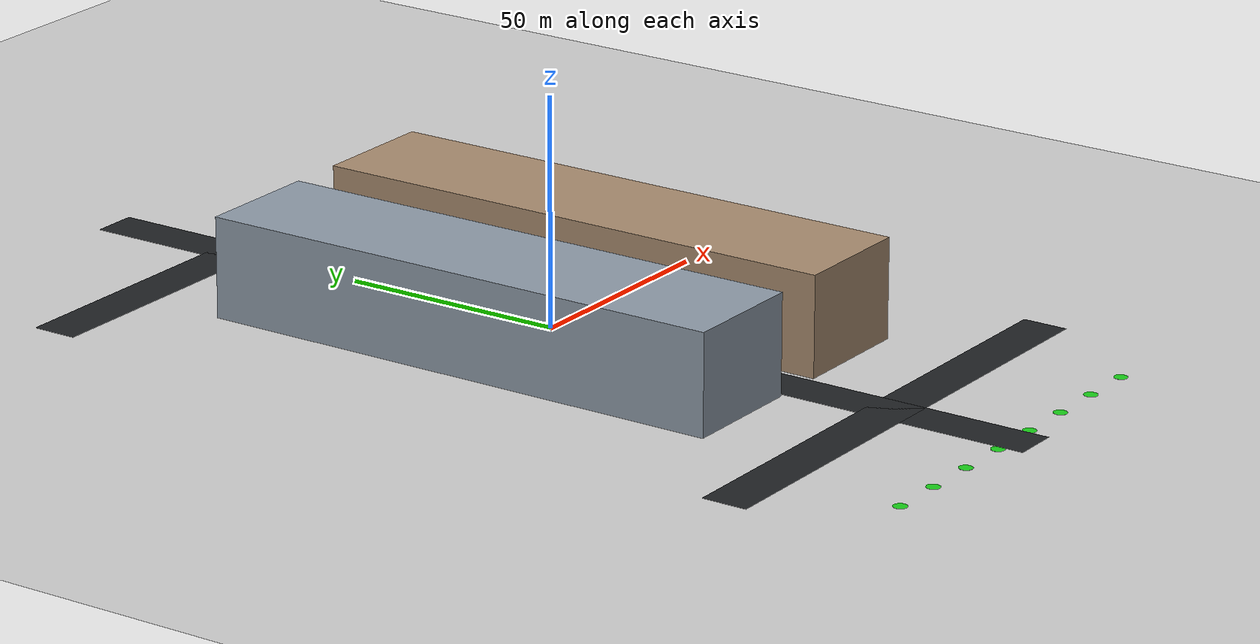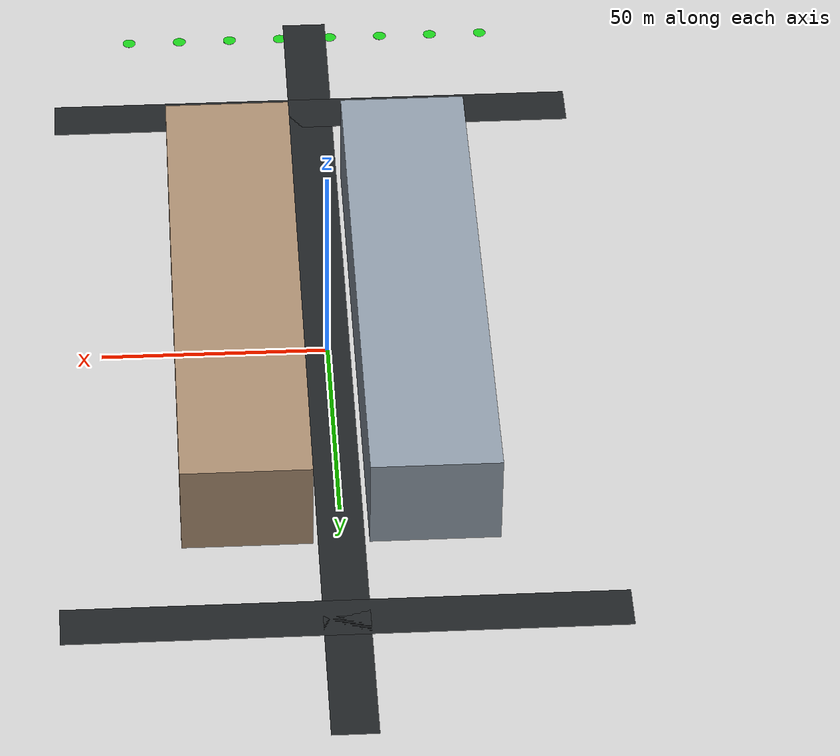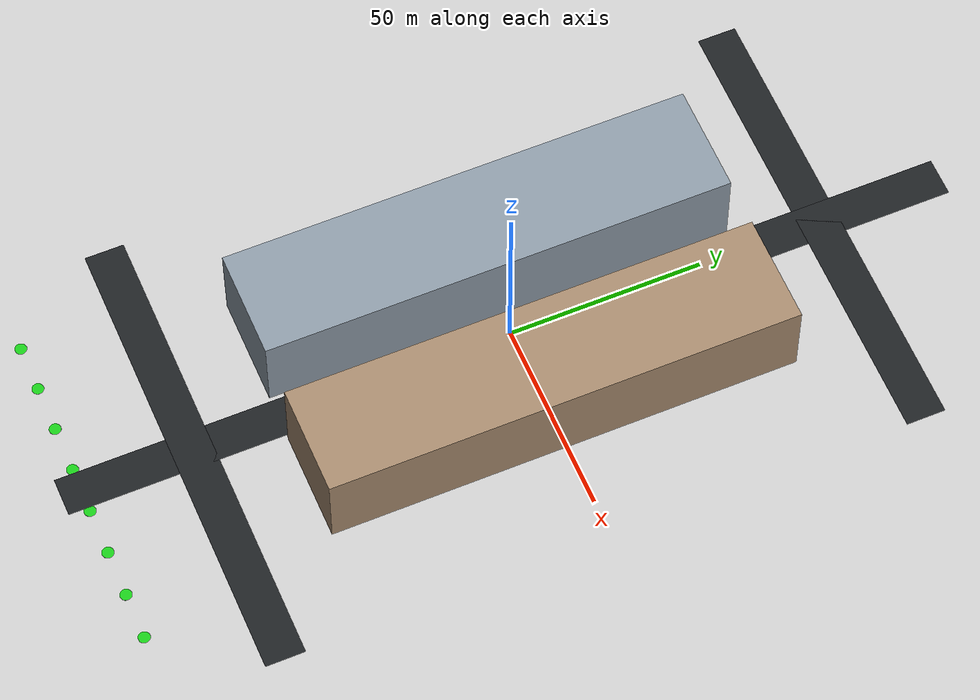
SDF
<?xml version="1.0"?>
<sdf version="1.6"><world name="outdoor_scale_yard">
  <physics name="default_physics" type="ode"><max_step_size>0.004</max_step_size><real_time_factor>1</real_time_factor><real_time_update_rate>250</real_time_update_rate><magnetic_field>6.0e-6 2.3e-5 -4.2e-5</magnetic_field></physics>
  <gravity>0 0 -9.8066</gravity>
  <include><uri>model://sun</uri></include>
  <include><uri>model://ground_plane</uri></include>
  <spherical_coordinates><surface_model>EARTH_WGS84</surface_model><latitude_deg>47.397742</latitude_deg><longitude_deg>8.545594</longitude_deg><elevation>488</elevation><heading_deg>0</heading_deg></spherical_coordinates>
<model name="road_0"><static>true</static><pose>0.000 0.000 0.012 0.000 0.000 0.000</pose><link name="link"><visual name="visual"><cast_shadows>false</cast_shadows><geometry><box><size>10 230 0.02</size></box></geometry><material><ambient>0.12 0.13 0.14 1</ambient><diffuse>0.12 0.13 0.14 1</diffuse></material></visual></link></model>
<model name="road_1"><static>true</static><pose>0.000 -82.000 0.012 0.000 0.000 0.000</pose><link name="link"><visual name="visual"><cast_shadows>false</cast_shadows><geometry><box><size>120 10 0.02</size></box></geometry><material><ambient>0.12 0.13 0.14 1</ambient><diffuse>0.12 0.13 0.14 1</diffuse></material></visual></link></model>
<model name="road_2"><static>true</static><pose>0.000 82.000 0.012 0.000 0.000 0.000</pose><link name="link"><visual name="visual"><cast_shadows>false</cast_shadows><geometry><box><size>120 10 0.02</size></box></geometry><material><ambient>0.12 0.13 0.14 1</ambient><diffuse>0.12 0.13 0.14 1</diffuse></material></visual></link></model>
<model name="building_0"><static>true</static><pose>-20.000 0.000 11.000 0 0 0</pose><link name="link"><collision name="collision"><geometry><box><size>28 120 22</size></box></geometry></collision><visual name="visual"><geometry><box><size>28 120 22</size></box></geometry><material><ambient>0.55 0.60 0.65 1</ambient><diffuse>0.55 0.60 0.65 1</diffuse></material></visual></link></model>
<model name="building_1"><static>true</static><pose>20.000 0.000 11.000 0 0 0</pose><link name="link"><collision name="collision"><geometry><box><size>28 120 22</size></box></geometry></collision><visual name="visual"><geometry><box><size>28 120 22</size></box></geometry><material><ambient>0.65 0.54 0.43 1</ambient><diffuse>0.65 0.54 0.43 1</diffuse></material></visual></link></model>
<model name="start_zone"><static>true</static><pose>-42.000 -110.000 -0.009 0.000 0.000 0.000</pose><link name="link"><visual name="visual"><cast_shadows>false</cast_shadows><geometry><cylinder><radius>1.5</radius><length>0.02</length></cylinder></geometry><material><ambient>0.1 0.8 0.1 1</ambient><diffuse>0.1 0.8 0.1 1</diffuse></material></visual></link></model>
<model name="uav_pad_1"><static>true</static><pose>-30.000 -110.000 -0.009 0.000 0.000 0.000</pose><link name="link"><visual name="visual"><cast_shadows>false</cast_shadows><geometry><cylinder><radius>1.5</radius><length>0.02</length></cylinder></geometry><material><ambient>0.1 0.8 0.1 1</ambient><diffuse>0.1 0.8 0.1 1</diffuse></material></visual></link></model>
<model name="uav_pad_2"><static>true</static><pose>-18.000 -110.000 -0.009 0.000 0.000 0.000</pose><link name="link"><visual name="visual"><cast_shadows>false</cast_shadows><geometry><cylinder><radius>1.5</radius><length>0.02</length></cylinder></geometry><material><ambient>0.1 0.8 0.1 1</ambient><diffuse>0.1 0.8 0.1 1</diffuse></material></visual></link></model>
<model name="uav_pad_3"><static>true</static><pose>-6.000 -110.000 -0.009 0.000 0.000 0.000</pose><link name="link"><visual name="visual"><cast_shadows>false</cast_shadows><geometry><cylinder><radius>1.5</radius><length>0.02</length></cylinder></geometry><material><ambient>0.1 0.8 0.1 1</ambient><diffuse>0.1 0.8 0.1 1</diffuse></material></visual></link></model>
<model name="uav_pad_4"><static>true</static><pose>6.000 -110.000 -0.009 0.000 0.000 0.000</pose><link name="link"><visual name="visual"><cast_shadows>false</cast_shadows><geometry><cylinder><radius>1.5</radius><length>0.02</length></cylinder></geometry><material><ambient>0.1 0.8 0.1 1</ambient><diffuse>0.1 0.8 0.1 1</diffuse></material></visual></link></model>
<model name="uav_pad_5"><static>true</static><pose>18.000 -110.000 -0.009 0.000 0.000 0.000</pose><link name="link"><visual name="visual"><cast_shadows>false</cast_shadows><geometry><cylinder><radius>1.5</radius><length>0.02</length></cylinder></geometry><material><ambient>0.1 0.8 0.1 1</ambient><diffuse>0.1 0.8 0.1 1</diffuse></material></visual></link></model>
<model name="uav_pad_6"><static>true</static><pose>30.000 -110.000 -0.009 0.000 0.000 0.000</pose><link name="link"><visual name="visual"><cast_shadows>false</cast_shadows><geometry><cylinder><radius>1.5</radius><length>0.02</length></cylinder></geometry><material><ambient>0.1 0.8 0.1 1</ambient><diffuse>0.1 0.8 0.1 1</diffuse></material></visual></link></model>
<model name="uav_pad_7"><static>true</static><pose>42.000 -110.000 -0.009 0.000 0.000 0.000</pose><link name="link"><visual name="visual"><cast_shadows>false</cast_shadows><geometry><cylinder><radius>1.5</radius><length>0.02</length></cylinder></geometry><material><ambient>0.1 0.8 0.1 1</ambient><diffuse>0.1 0.8 0.1 1</diffuse></material></visual></link></model>
<model name="goal_zone"><static>true</static><pose>0.000 110.000 -0.009 0.000 0.000 0.000</pose><link name="link"><visual name="visual"><cast_shadows>false</cast_shadows><geometry><cylinder><radius>1.5</radius><length>0.02</length></cylinder></geometry><material><ambient>0.9 0.15 0.1 1</ambient><diffuse>0.9 0.15 0.1 1</diffuse></material></visual></link></model>
</world></sdf>
